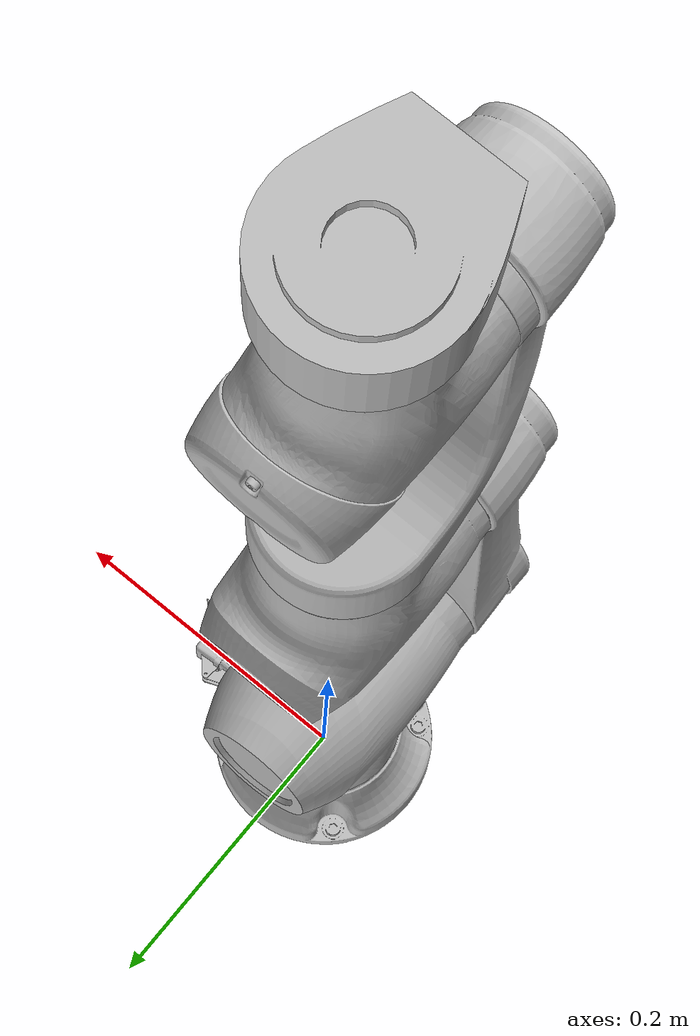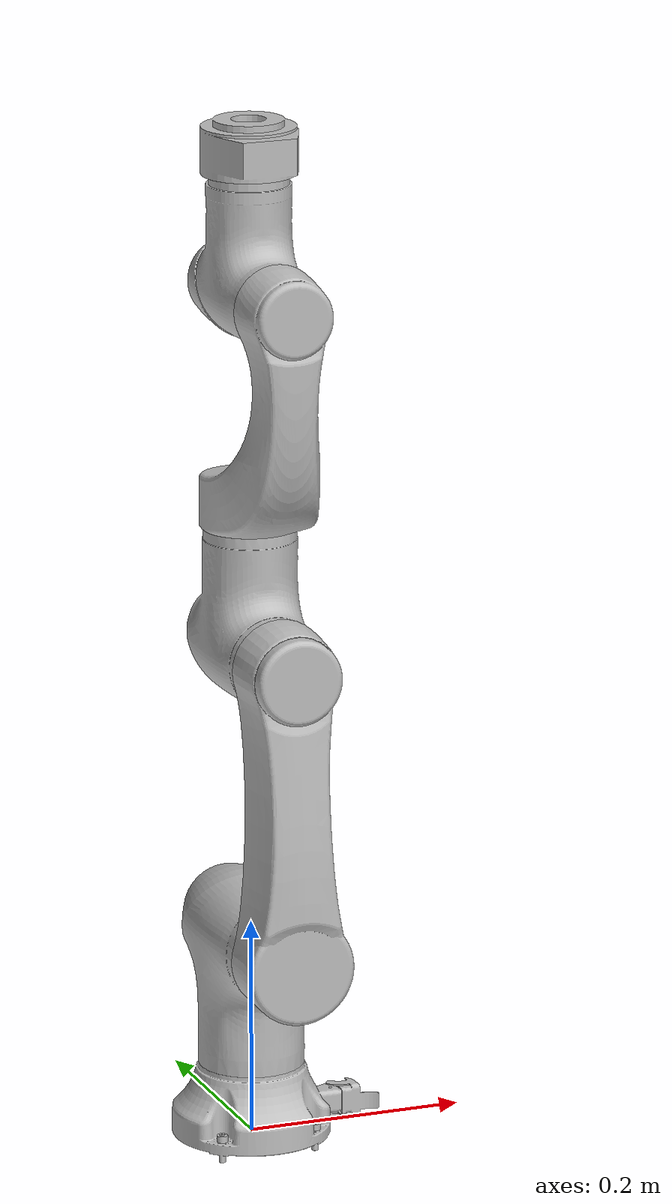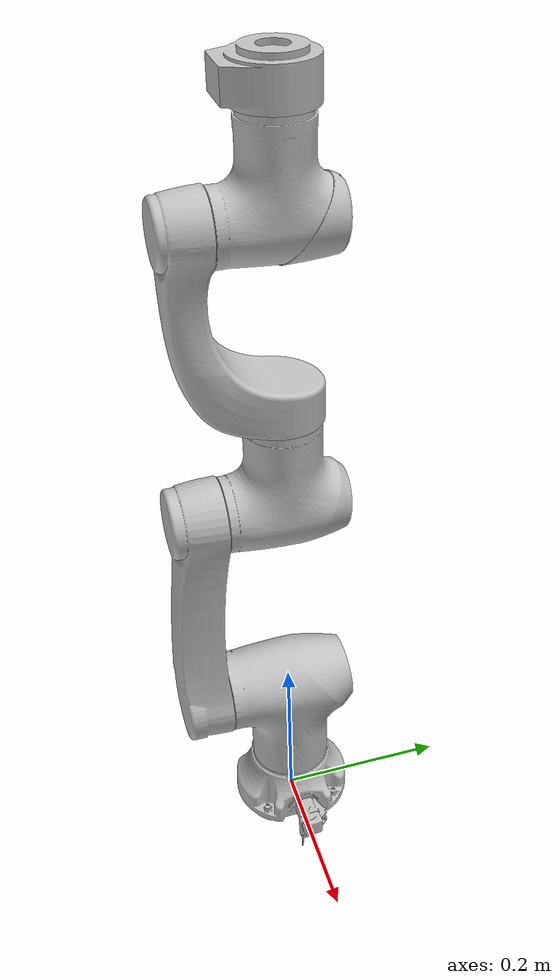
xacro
<robot
  name="elfin3" xmlns:xacro="http://www.ros.org/wiki/xacro">

  <xacro:include filename="$(find elfin_description)/urdf/materials.xacro" />

  <xacro:include filename="$(find elfin_description)/urdf/elfin_robot.gazebo" />

  <xacro:include filename="$(find elfin_description)/urdf/elfin_transmission.xacro" />

  <xacro:property name="PI" value="3.1415926535897931"/>

  <xacro:property name="density" value="3.09"/>

  <link name="world"/>

  <joint name="world_base" type="fixed">
    <origin
      xyz="0 0 0"
      rpy="0 0 -1.5708" />
    <parent
      link="world" />
    <child
      link="elfin_base_link" />
  </joint>

  <link name="elfin_base_link"/>

  <joint name="elfin_base_joint" type="fixed">
    <origin
      xyz="0 0 0"
      rpy="0 0 ${PI/2}" />
    <parent
      link="elfin_base_link" />
    <child
      link="elfin_base" />
  </joint>

 <link
    name="elfin_base">
    <inertial>
      <origin
        xyz="-0.000275485599623298 7.59034702891903E-06 0.0267651528589008"
        rpy="0 0 0" />
      <mass
        value="0.728456071678781" />
      <inertia
        ixx="0.000970397629421624"
        ixy="3.62553999566492E-08"
        ixz="-1.47235460345842E-05"
        iyy="0.00088280791320513"
        iyz="-5.96416765248893E-08"
        izz="0.00145846071899871" />
    </inertial>
    <visual>
      <origin
        xyz="0 0 0"
        rpy="0 0 0" />
      <geometry>
        <mesh
          filename="package://elfin_description/meshes/elfin3/elfin_base.STL" />
      </geometry>
      <material
        name="">
        <color
          rgba="0.752941176470588 0.752941176470588 0.752941176470588 1" />
      </material>
    </visual>
    <collision>
      <origin
        xyz="0 0 0"
        rpy="0 0 0" />
      <geometry>
        <mesh
          filename="package://elfin_description/meshes/elfin3/elfin_base.STL" />
      </geometry>
    </collision>
  </link>
  <link
    name="elfin_link1">
    <inertial>
      <origin
        xyz="-8.22323356984713E-06 -0.0039667333981909 -0.0290082756012436"
        rpy="0 0 0" />
      <mass
        value="1.98577153801731" />
      <inertia
        ixx="0.0059460417373412"
        ixy="-7.00618460961318E-07"
        ixz="-2.70118506895605E-07"
        iyy="0.00528005523214319"
        iyz="0.00114506851258069"
        izz="0.00325219340192972" />
    </inertial>
    <visual>
      <origin
        xyz="0 0 0"
        rpy="0 0 0" />
      <geometry>
        <mesh
          filename="package://elfin_description/meshes/elfin3/elfin_link1.STL" />
      </geometry>
      <material
        name="">
        <color
          rgba="0.752941176470588 0.752941176470588 0.752941176470588 1" />
      </material>
    </visual>
    <collision>
      <origin
        xyz="0 0 0"
        rpy="0 0 0" />
      <geometry>
        <mesh
          filename="package://elfin_description/meshes/elfin3/elfin_link1.STL" />
      </geometry>
    </collision>
  </link>
  <joint
    name="elfin_joint1"
    type="revolute">
    <origin
      xyz="0 0 0.1925"
      rpy="0 0 0" />
    <parent
      link="elfin_base" />
    <child
      link="elfin_link1" />
    <axis
      xyz="0 0 1" />
    <limit
      lower="-3.14"
      upper="3.14"
      effort="200"
      velocity="1.57" />
  </joint>
  <link
    name="elfin_link2">
    <inertial>
      <origin
        xyz="-1.16232734714673E-05 0.116434226200619 0.107577852399745"
        rpy="0 0 0" />
      <mass
        value="1.40617433597616" />
      <inertia
        ixx="0.0116524684265068"
        ixy="2.47639007244578E-06"
        ixz="-1.30890011077188E-07"
        iyy="0.000937691661869045"
        iyz="0.000516659498705414"
        izz="0.0120822102121993" />
    </inertial>
    <visual>
      <origin
        xyz="0 0 0"
        rpy="0 0 0" />
      <geometry>
        <mesh
          filename="package://elfin_description/meshes/elfin3/elfin_link2.STL" />
      </geometry>
      <material
        name="">
        <color
          rgba="0.752941176470588 0.752941176470588 0.752941176470588 1" />
      </material>
    </visual>
    <collision>
      <origin
        xyz="0 0 0"
        rpy="0 0 0" />
      <geometry>
        <mesh
          filename="package://elfin_description/meshes/elfin3/elfin_link2.STL" />
      </geometry>
    </collision>
  </link>
  <joint
    name="elfin_joint2"
    type="revolute">
    <origin
      xyz="0 0 0"
      rpy="1.5708 0 0" />
    <parent
      link="elfin_link1" />
    <child
      link="elfin_link2" />
    <axis
      xyz="0 0 1" />
    <limit
      lower="-2.35"
      upper="2.35"
      effort="200"
      velocity="1.57" />
  </joint>
  <link
    name="elfin_link3">
    <inertial>
      <origin
        xyz="0.0262387073150999 5.37044335293884E-06 -0.00343411596931149"
        rpy="0 0 0" />
      <mass
        value="1.39255453742279" />
      <inertia
        ixx="0.00182232495944746"
        ixy="-2.21097754348067E-07"
        ixz="-0.000639319275242194"
        iyy="0.00336261409093928"
        iyz="-5.59685465899292E-07"
        izz="0.0029273181824904" />
    </inertial>
    <visual>
      <origin
        xyz="0 0 0"
        rpy="0 0 0" />
      <geometry>
        <mesh
          filename="package://elfin_description/meshes/elfin3/elfin_link3.STL" />
      </geometry>
      <material
        name="">
        <color
          rgba="0.752941176470588 0.752941176470588 0.752941176470588 1" />
      </material>
    </visual>
    <collision>
      <origin
        xyz="0 0 0"
        rpy="0 0 0" />
      <geometry>
        <mesh
          filename="package://elfin_description/meshes/elfin3/elfin_link3.STL" />
      </geometry>
    </collision>
  </link>
  <joint
    name="elfin_joint3"
    type="revolute">
    <origin
      xyz="0 0.266 0"
      rpy="3.1416 0 1.5708" />
    <parent
      link="elfin_link2" />
    <child
      link="elfin_link3" />
    <axis
      xyz="0 0 1" />
    <limit
      lower="-2.61"
      upper="2.61"
      effort="200"
      velocity="1.57" />
  </joint>
  <link
    name="elfin_link4">
    <inertial>
      <origin
        xyz="1.95216712879575E-06 -0.0600119802928874 0.203829262782307"
        rpy="0 0 0" />
      <mass
        value="1.01776198349465" />
      <inertia
        ixx="0.00655093186907593"
        ixy="3.55081363904659E-08"
        ixz="-4.08511113735521E-09"
        iyy="0.00535736774588743"
        iyz="0.00190350389406001"
        izz="0.00209832030530978" />
    </inertial>
    <visual>
      <origin
        xyz="0 0 0"
        rpy="0 0 0" />
      <geometry>
        <mesh
          filename="package://elfin_description/meshes/elfin3/elfin_link4.STL" />
      </geometry>
      <material
        name="">
        <color
          rgba="0.752941176470588 0.752941176470588 0.752941176470588 1" />
      </material>
    </visual>
    <collision>
      <origin
        xyz="0 0 0"
        rpy="0 0 0" />
      <geometry>
        <mesh
          filename="package://elfin_description/meshes/elfin3/elfin_link4.STL" />
      </geometry>
    </collision>
  </link>
  <joint
    name="elfin_joint4"
    type="revolute">
    <origin
      xyz="0 0 0"
      rpy="1.5708 0 1.5708" />
    <parent
      link="elfin_link3" />
    <child
      link="elfin_link4" />
    <axis
      xyz="0 0 1" />
    <limit
      lower="-3.14"
      upper="3.14"
      effort="104"
      velocity="1.57" />
  </joint>
  <link
    name="elfin_link5">
    <inertial>
      <origin
        xyz="-1.05068636685517E-06 -0.0219935514987241 -0.00313939590811477"
        rpy="0 0 0" />
      <mass
        value="1.18717982318704" />
      <inertia
        ixx="0.00223607662582573"
        ixy="7.69188742276543E-08"
        ixz="1.87240425660768E-07"
        iyy="0.00135159846206807"
        iyz="0.000420977818600338"
        izz="0.00193236503805376" />
    </inertial>
    <visual>
      <origin
        xyz="0 0 0"
        rpy="0 0 0" />
      <geometry>
        <mesh
          filename="package://elfin_description/meshes/elfin3/elfin_link5.STL" />
      </geometry>
      <material
        name="">
        <color
          rgba="0.752941176470588 0.752941176470588 0.752941176470588 1" />
      </material>
    </visual>
    <collision>
      <origin
        xyz="0 0 0"
        rpy="0 0 0" />
      <geometry>
        <mesh
          filename="package://elfin_description/meshes/elfin3/elfin_link5.STL" />
      </geometry>
    </collision>
  </link>
  <joint
    name="elfin_joint5"
    type="revolute">
    <origin
      xyz="0 0 0.324"
      rpy="-1.5708 0 0" />
    <parent
      link="elfin_link4" />
    <child
      link="elfin_link5" />
    <axis
      xyz="0 0 1" />
    <limit
      lower="-2.56"
      upper="2.56"
      effort="34"
      velocity="1.57" />
  </joint>
  <link
    name="elfin_link6">
    <inertial>
      <origin
        xyz="-1.59841657886289E-05 -0.000344916688977395 0.128921909889016"
        rpy="0 0 0" />
      <mass
        value="0.281755133199608" />
      <inertia
        ixx="0.000141506869072505"
        ixy="-3.26513130381335E-08"
        ixz="7.38940974164905E-08"
        iyy="0.000144516478429971"
        iyz="-8.86072925228107E-08"
        izz="0.000252050888111854" />
    </inertial>
    <visual>
      <origin
        xyz="0 0 0"
        rpy="0 0 0" />
      <geometry>
        <mesh
          filename="package://elfin_description/meshes/elfin3/elfin_link6.STL" />
      </geometry>
      <material
        name="">
        <color
          rgba="0.752941176470588 0.752941176470588 0.752941176470588 1" />
      </material>
    </visual>
    <collision>
      <origin
        xyz="0 0 0"
        rpy="0 0 0" />
      <geometry>
        <mesh
          filename="package://elfin_description/meshes/elfin3/elfin_link6.STL" />
      </geometry>
    </collision>
  </link>
  <joint
    name="elfin_joint6"
    type="revolute">
    <origin
      xyz="0 0 0"
      rpy="1.5708 0 0" />
    <parent
      link="elfin_link5" />
    <child
      link="elfin_link6" />
    <axis
      xyz="0 0 1" />
    <limit
      lower="-3.14"
      upper="3.14"
      effort="34"
      velocity="1.57" />
  </joint>
  <link
    name="elfin_end_link"/>
  <joint
    name="elfin_end_joint"
    type="fixed">
    <origin
      xyz="0 0 0.1565"
      rpy="0 0 0" />
    <parent
      link="elfin_link6" />
    <child
      link="elfin_end_link" />
    <axis
      xyz="0 0 0" />
  </joint>

  <link name="elfin_dummy_gripper"/>

  <joint name="elfin_dummy_joint" type="fixed">
    <origin
      xyz="0 -0.111 0"
      rpy="${PI/2} ${-PI/2} 0" />
    <parent
      link="elfin_link6" />
    <child
      link="elfin_dummy_gripper" />
  </joint>

</robot>

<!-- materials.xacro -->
<robot xmlns:xacro="http://www.ros.org/wiki/xacro">

  <material name="black">
    <color rgba="0.0 0.0 0.0 1.0"/>
  </material>

  <material name="blue">
    <color rgba="0.0 0.0 0.8 1.0"/>
  </material>

  <material name="green">
    <color rgba="0.0 0.8 0.0 1.0"/>
  </material>

  <material name="grey">
    <color rgba="0.2 0.2 0.2 1.0"/>
  </material>

  <material name="orange">
    <color rgba="${255/255} ${108/255} ${10/255} 1.0"/>
  </material>

  <material name="brown">
    <color rgba="${222/255} ${207/255} ${195/255} 1.0"/>
  </material>

  <material name="red">
    <color rgba="0.8 0.0 0.0 1.0"/>
  </material>

  <material name="white">
    <color rgba="1.0 1.0 1.0 1.0"/>
  </material>

  <material name="metal">
    <color rgba="0.768627450980392 0.749019607843137 0.729411764705882 1" />
  </material>

  <material name="metal_grey">
    <color rgba="0.501960784313725 0.501960784313725 0.501960784313725 1" />
  </material>

  <material name="metal_white">
    <color rgba="0.866666666666667 0.866666666666667 0.890196078431373 1" />
  </material>

</robot>
